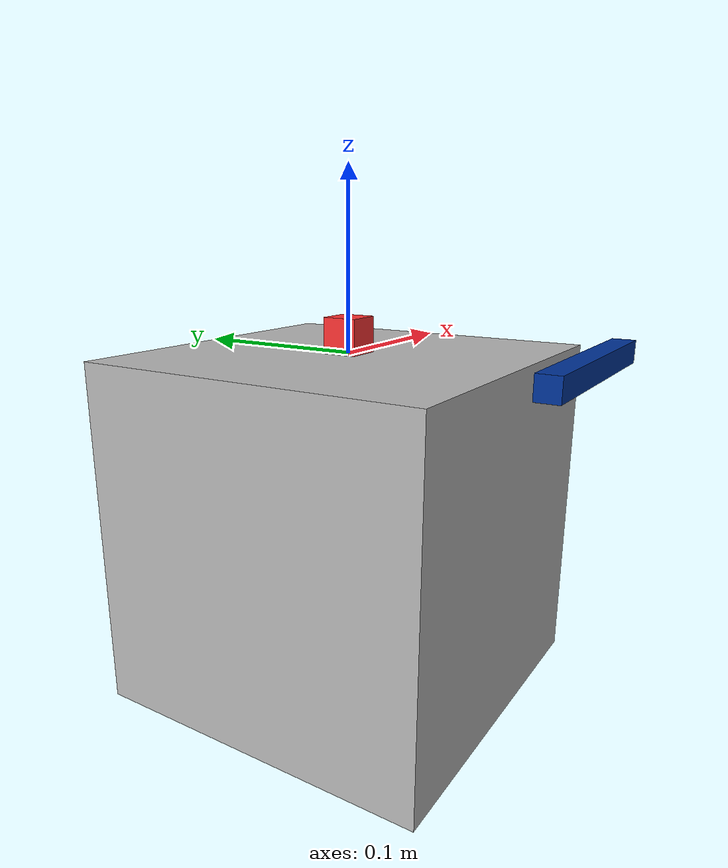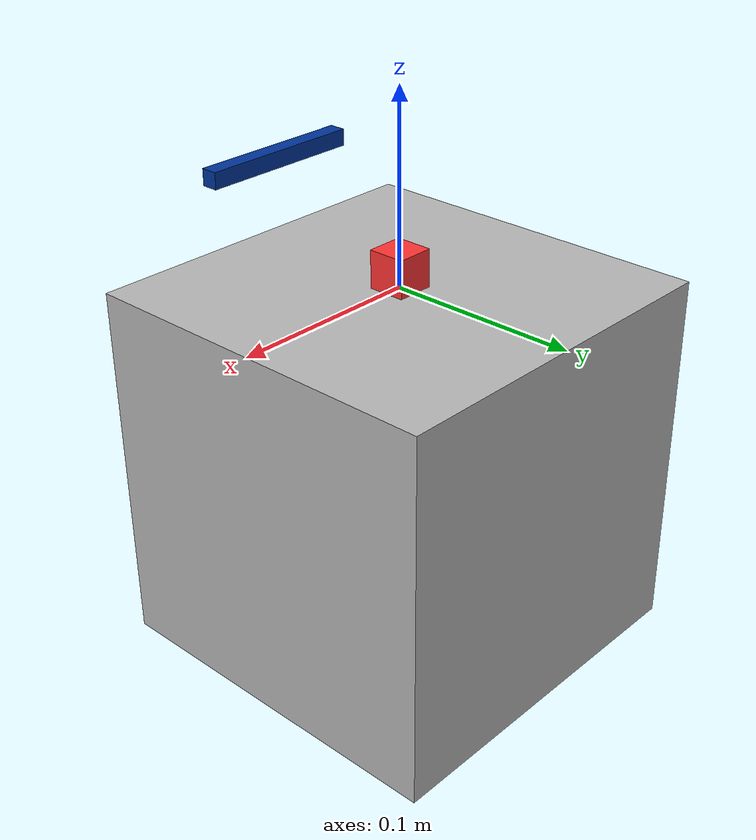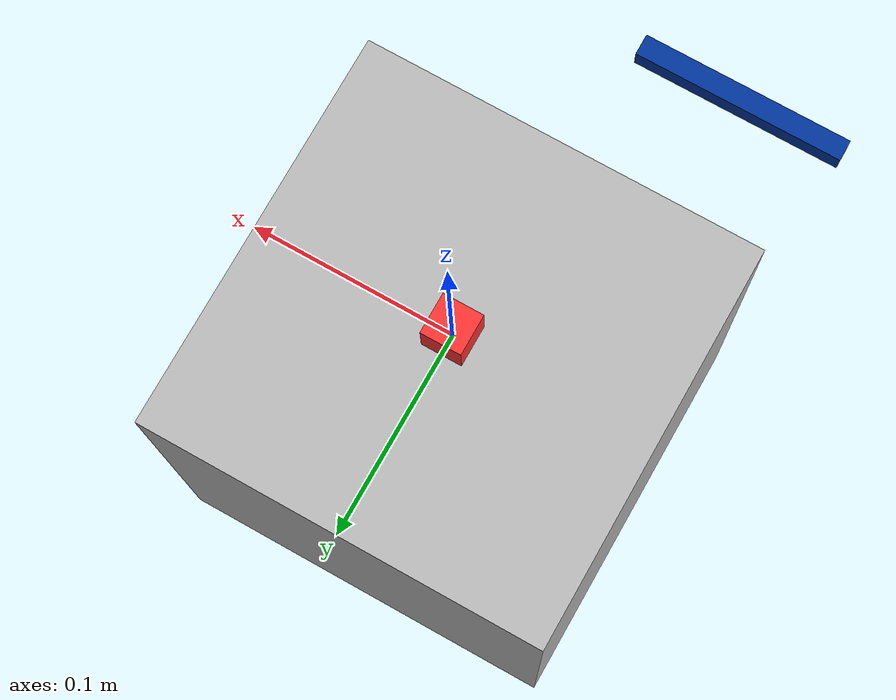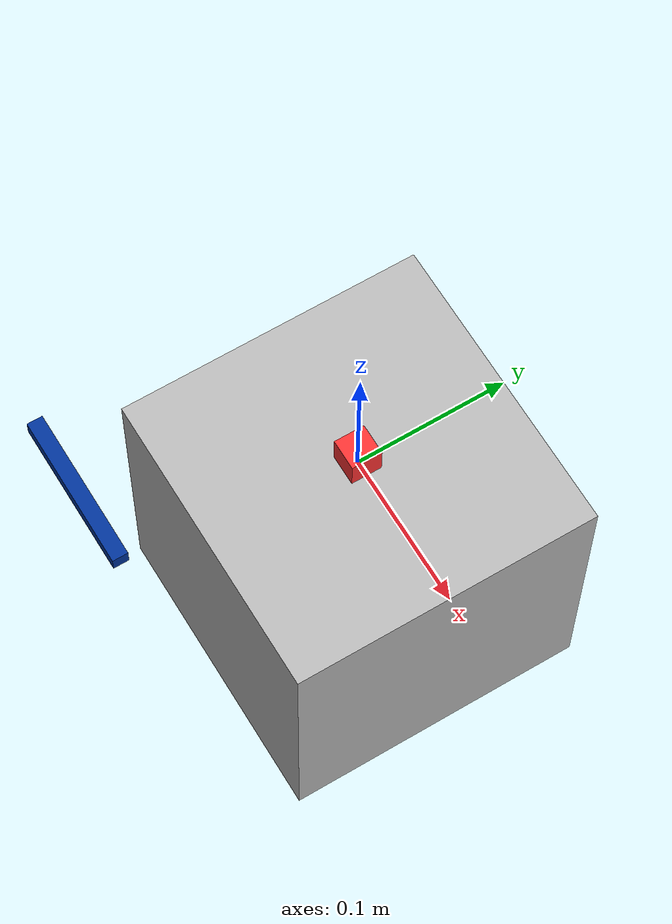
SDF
<?xml version="1.0" encoding="UTF-8"?>
<sdf version="1.9">
  <world name="default">
    <plugin
      filename="ignition-gazebo-physics-system"
      name="ignition::gazebo::systems::Physics">
    </plugin>
    <plugin
      filename="ignition-gazebo-scene-broadcaster-system"
      name="ignition::gazebo::systems::SceneBroadcaster">
    </plugin>

    <light type="directional" name="sun">
      <cast_shadows>true</cast_shadows>
      <pose>0 0 10 0 0 0</pose>
      <diffuse>0.8 0.8 0.8 1</diffuse>
      <specular>0.8 0.8 0.8 1</specular>
      <attenuation>
        <range>1000</range>
        <constant>0.9</constant>
        <linear>0.01</linear>
        <quadratic>0.001</quadratic>
      </attenuation>
      <direction>-0.5 0.1 -0.9</direction>
    </light>

    <model name="table">
      <pose>0 0 -0.1 0 0 0</pose>
      <static>true</static>
      <link name="surface">
        <collision name="surface">
          <geometry>
            <box>
              <size>0.2 0.2 0.2</size>
            </box>
          </geometry>
        </collision>
        <visual name="surface_visual">
          <geometry>
            <box>
              <size>0.2 0.2 0.2</size>
            </box>
          </geometry>
        </visual>
      </link>
    </model>

    <model name="object">
      <pose>0 0.0 0.01 0 0 0</pose>
      <link name="body">
        <inertial>
          <mass>1.0</mass>
          <inertia>
            <ixx>0.0005</ixx>
            <ixy>0</ixy>
            <ixz>0</ixz>
            <iyy>0.0005</iyy>
            <iyz>0</iyz>
            <izz>0.0005</izz>
          </inertia>
        </inertial>
        <collision name="object_collision">
          <geometry>
            <box>
              <size>0.02 0.02 0.02</size>
            </box>
          </geometry>
        </collision>
        <visual name="object_visual">
          <geometry>
            <box>
              <size>0.02 0.02 0.02</size>
            </box>
          </geometry>
          <material>
            <ambient>1.0 0.2 0.2 1</ambient>
            <diffuse>1.0 0.2 0.2 1</diffuse>
            <specular>1.0 0.2 0.2 1</specular>
          </material>
        </visual>
      </link>
    </model>

    <model name="simple_arm">
      <pose>-0.06 -0.15 0.015 0 0 0</pose>
      <joint name="base_joint" type="prismatic">
        <parent>world</parent>
        <child>arm_link</child>
        <axis>
            <xyz>0 1 0</xyz>
        </axis>
      </joint>
      <link name="arm_link">
        <inertial>
          <mass>1.0</mass>
          <inertia>
            <ixx>0.0005</ixx>
            <ixy>0</ixy>
            <ixz>0</ixz>
            <iyy>0.001</iyy>
            <iyz>0</iyz>
            <izz>0.001</izz>
          </inertia>
        </inertial>
        <collision name="arm_link_collision">
          <geometry>
            <box>
              <size>0.1 0.01 0.01</size>
            </box>
          </geometry>
        </collision>
        <visual name="arm_link_visual">
          <geometry>
            <box>
              <size>0.1 0.01 0.01</size>
            </box>
          </geometry>
          <material>
            <ambient>0.0 0.2 0.6 1</ambient>
            <diffuse>0.0 0.2 0.6 1</diffuse>
            <specular>0.0 0.2 0.6 1</specular>
          </material>
        </visual>
      </link>

      <plugin filename="reset-plugin-system" name="ignition::gazebo::TestPlugin" />
    </model>

  </world>
</sdf>
